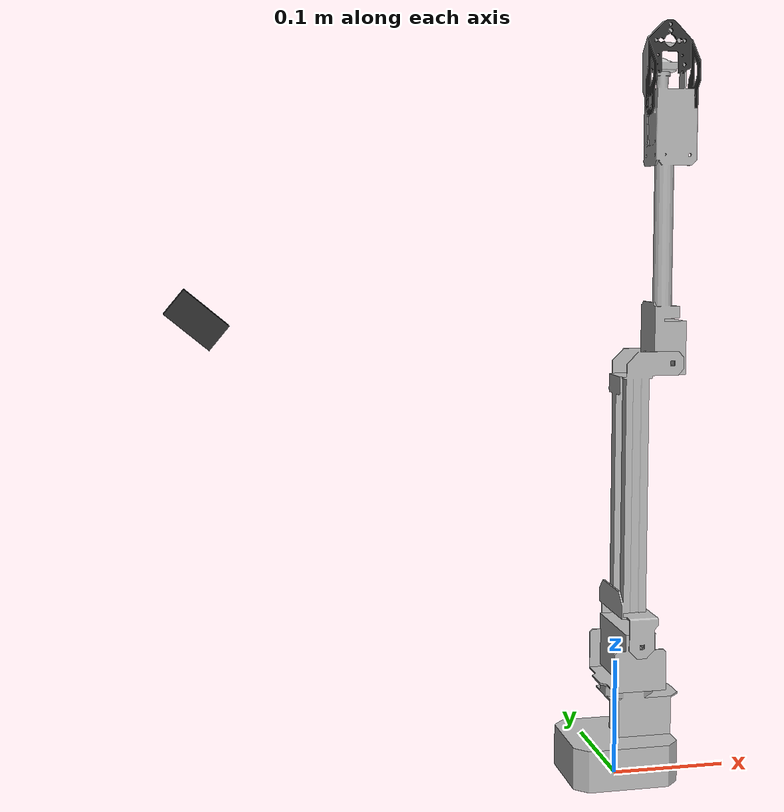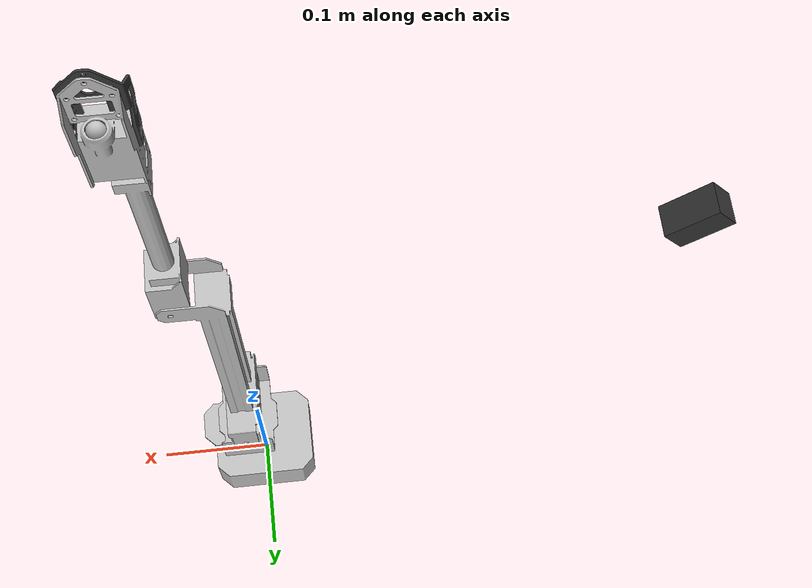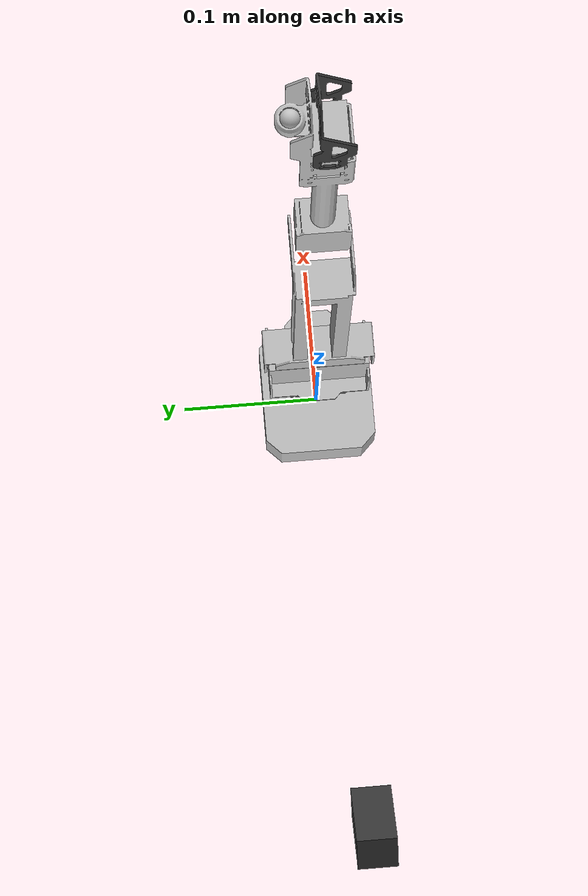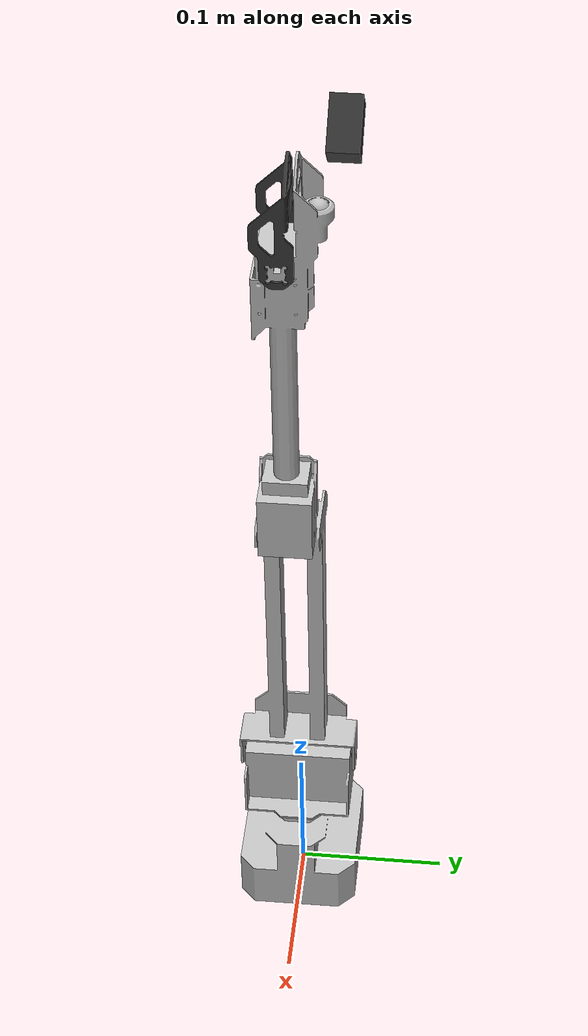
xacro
<?xml version="1.0"?>
<robot xmlns:xacro="http://www.ros.org/wiki/xacro" name="roarm_description">

  <xacro:arg name="initial_positions_file" default="initial_positions.yaml"/>
  <xacro:arg name="camera_mode"            default="eye_to_hand"/>

  <!-- ── Original URDF from submodule (read-only) ─────────────────────── -->
  <xacro:include filename="$(find roarm_description)/urdf/roarm_description.urdf"/>

  <!-- ── ros2_control hardware interface from roarm_moveit ─────────────── -->
  <xacro:include
    filename="$(find roarm_moveit)/config/roarm_description.ros2_control.xacro"/>
  <xacro:roarm_description_ros2_control
    name="FakeSystem"
    initial_positions_file="$(arg initial_positions_file)"/>

  <xacro:if value="${'$(arg camera_mode)' == 'eye_to_hand'}">
    <link name="camera_stand_link"/>
    <joint name="base_to_camera_stand" type="fixed">
      <parent link="base_link"/>
      <child  link="camera_stand_link"/>
      <!-- 35 cm behind base, 40 cm high, tilted ~40° downward toward workspace -->
      <origin xyz="-0.35 0.0 0.40" rpy="0.0 0.698 0.0"/>
    </joint>

    <link name="camera_link">
      <visual>
        <geometry><box size="0.045 0.025 0.025"/></geometry>
        <material name="dark_grey"><color rgba="0.2 0.2 0.2 1"/></material>
      </visual>
      <collision>
        <geometry><box size="0.045 0.025 0.025"/></geometry>
      </collision>
      <inertial>
        <mass value="0.085"/>
        <inertia ixx="1e-5" ixy="0" ixz="0" iyy="1e-5" iyz="0" izz="1e-5"/>
      </inertial>
    </link>
    <joint name="camera_stand_to_camera" type="fixed">
      <parent link="camera_stand_link"/>
      <child  link="camera_link"/>
      <origin xyz="0 0 0" rpy="0 0 0"/>
    </joint>
  </xacro:if>

  <xacro:unless value="${'$(arg camera_mode)' == 'eye_to_hand'}">
    <link name="camera_link">
      <visual>
        <geometry><box size="0.045 0.025 0.025"/></geometry>
        <material name="dark_grey"><color rgba="0.2 0.2 0.2 1"/></material>
      </visual>
      <collision>
        <geometry><box size="0.045 0.025 0.025"/></geometry>
      </collision>
      <inertial>
        <mass value="0.085"/>
        <inertia ixx="1e-5" ixy="0" ixz="0" iyy="1e-5" iyz="0" izz="1e-5"/>
      </inertial>
    </link>
    <joint name="link3_to_camera" type="fixed">
      <parent link="link3"/>
      <child  link="camera_link"/>
      <!-- Approximate bracket offset — update after calibration -->
      <origin xyz="0.02 -0.18 0.03" rpy="-1.5708 0.0 -1.5708"/>
    </joint>
  </xacro:unless>

  <link name="camera_color_optical_frame"/>
  <joint name="camera_to_color_optical" type="fixed">
    <parent link="camera_link"/>
    <child  link="camera_color_optical_frame"/>
    <origin xyz="0 0 0" rpy="-1.5708 0.0 -1.5708"/>
  </joint>

  <link name="camera_depth_optical_frame"/>
  <joint name="camera_to_depth_optical" type="fixed">
    <parent link="camera_link"/>
    <child  link="camera_depth_optical_frame"/>
    <!-- Small depth-to-color offset; updated by orbbec_camera_node TF via SDK extrinsics -->
    <origin xyz="0.015 0.0 0.0" rpy="-1.5708 0.0 -1.5708"/>
  </joint>

</robot>

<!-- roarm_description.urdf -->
<robot
  name="roarm_description">
  <link
    name="base_link">
    <inertial>
      <origin
        xyz="0.00373847392098165 -1.52445893424664E-10 0.0264265327292804"
        rpy="0 0 0" />
      <mass
        value="0.326392759093976" />
      <inertia
        ixx="0.000224202818963409"
        ixy="-1.96773409840189E-13"
        ixz="-2.99224798427881E-05"
        iyy="0.000286616921839535"
        iyz="-3.10964171549742E-13"
        izz="0.000349957607258242" />
    </inertial>
    <visual>
      <origin
        xyz="0 0 0"
        rpy="0 0 0" />
      <geometry>
        <mesh
          filename="package://roarm_description/meshes/base_link.STL" />
      </geometry>
      <material
        name="">
        <color
          rgba="0.752941176470588 0.752941176470588 0.752941176470588 1" />
      </material>
    </visual>
    <collision>
      <origin
        xyz="0 0 0"
        rpy="0 0 0" />
      <geometry>
        <mesh
          filename="package://roarm_description/meshes/base_link.STL" />
      </geometry>
    </collision>
  </link>
  <link
    name="link1">
    <inertial>
      <origin
        xyz="-3.11559626639357E-12 9.70240468164796E-06 -0.0146667419724465"
        rpy="0 0 0" />
      <mass
        value="0.0928887601998397" />
      <inertia
        ixx="6.09210980255232E-05"
        ixy="-2.79207542479444E-18"
        ixz="4.24841739939559E-15"
        iyy="2.53493566630784E-05"
        iyz="2.16442830142331E-08"
        izz="4.88050835919342E-05" />
    </inertial>
    <visual>
      <origin
        xyz="0 0 0"
        rpy="0 0 0" />
      <geometry>
        <mesh
          filename="package://roarm_description/meshes/link1.STL" />
      </geometry>
      <material
        name="">
        <color
          rgba="0.752941176470588 0.752941176470588 0.752941176470588 1" />
      </material>
    </visual>
    <collision>
      <origin
        xyz="0 0 0"
        rpy="0 0 0" />
      <geometry>
        <mesh
          filename="package://roarm_description/meshes/link1.STL" />
      </geometry>
    </collision>
  </link>
  <joint
    name="base_link_to_link1"
    type="revolute">
    <origin
      xyz="0.0100000008759151 0 0.123059270461044"
      rpy="0 0 0" />
    <parent
      link="base_link" />
    <child
      link="link1" />
    <axis
      xyz="0 0 -1" />
    <limit
      lower="-3.1416"
      upper="3.1416"
      effort="0"
      velocity="0" />
  </joint>
  <link
    name="link2">
    <inertial>
      <origin
        xyz="0.122021157535333 6.61338425981053E-05 -9.50311342843365E-05"
        rpy="0 0 0" />
      <mass
        value="0.0895817175833772" />
      <inertia
        ixx="2.6269354271334E-05"
        ixy="-2.55344668379587E-06"
        ixz="-3.90237379833709E-09"
        iyy="0.000350369536011831"
        iyz="-6.82396195680563E-09"
        izz="0.000333056833230846" />
    </inertial>
    <visual>
      <origin
        xyz="0 0 0"
        rpy="0 0 0" />
      <geometry>
        <mesh
          filename="package://roarm_description/meshes/link2.STL" />
      </geometry>
      <material
        name="">
        <color
          rgba="0.752941176470588 0.752941176470588 0.752941176470588 1" />
      </material>
    </visual>
    <collision>
      <origin
        xyz="0 0 0"
        rpy="0 0 0" />
      <geometry>
        <mesh
          filename="package://roarm_description/meshes/link2.STL" />
      </geometry>
    </collision>
  </link>
  <joint
    name="link1_to_link2"
    type="revolute">
    <origin
      xyz="0 0 0"
      rpy="-1.5707963267949 -1.5707963267949 0" />
    <parent
      link="link1" />
    <child
      link="link2" />
    <axis
      xyz="0 0 -1" />
    <limit
      lower="-1.5708"
      upper="1.5708"
      effort="0"
      velocity="0" />
  </joint>
  <link
    name="link3">
    <inertial>
      <origin
        xyz="-0.00076280945740961 -0.114419656440929 -0.000177274968057332"
        rpy="0 0 0" />
      <mass
        value="0.123009044986454" />
      <inertia
        ixx="0.000104111883333949"
        ixy="1.06443789581137E-07"
        ixz="1.54925816846055E-07"
        iyy="1.46357151076022E-05"
        iyz="-1.6435520156444E-07"
        izz="0.000104009297710106" />
    </inertial>
    <visual>
      <origin
        xyz="0 0 0"
        rpy="0 0 0" />
      <geometry>
        <mesh
          filename="package://roarm_description/meshes/link3.STL" />
      </geometry>
      <material
        name="">
        <color
          rgba="0.752941176470588 0.752941176470588 0.752941176470588 1" />
      </material>
    </visual>
    <collision>
      <origin
        xyz="0 0 0"
        rpy="0 0 0" />
      <geometry>
        <mesh
          filename="package://roarm_description/meshes/link3.STL" />
      </geometry>
    </collision>
  </link>
  <joint
    name="link2_to_link3"
    type="revolute">
    <origin
      xyz="0.236815132922094 0.0300023995170449 0"
      rpy="0 0 1.5707963267949" />
    <parent
      link="link2" />
    <child
      link="link3" />
    <axis
      xyz="0 0 1" />
    <limit
      lower="-1"
      upper="3.1416"
      effort="0"
      velocity="0" />
  </joint>
  <link
    name="gripper_link">
    <inertial>
      <origin
        xyz="0.0288857415118809 -0.000776842039187049 -0.000779764534254559"
        rpy="0 0 0" />
      <mass
        value="0.00365697683069397" />
      <inertia
        ixx="1.15139272656909E-06"
        ixy="1.31250385773157E-07"
        ixz="-2.41954534039415E-13"
        iyy="2.33034171341163E-06"
        iyz="4.1392257505497E-13"
        izz="1.47179863096272E-06" />
    </inertial>
    <visual>
      <origin
        xyz="0 0 0"
        rpy="0 0 0" />
      <geometry>
        <mesh
          filename="package://roarm_description/meshes/gripper_link.STL" />
      </geometry>
      <material
        name="">
        <color
          rgba="0.219607843137255 0.219607843137255 0.219607843137255 1" />
      </material>
    </visual>
    <collision>
      <origin
        xyz="0 0 0"
        rpy="0 0 0" />
      <geometry>
        <mesh
          filename="package://roarm_description/meshes/gripper_link.STL" />
      </geometry>
    </collision>
  </link>
  <joint
    name="link3_to_gripper_link"
    type="revolute">
    <origin
      xyz="0.002906 -0.21599 -0.00066683"
      rpy="-1.5708 0 -1.5708" />
    <parent
      link="link3" />
    <child
      link="gripper_link" />
    <axis
      xyz="0 0 1" />
    <limit
      lower="0"
      upper="1.5"
      effort="0"
      velocity="0" />
  </joint>
  <link name="hand_tcp"></link>
  <joint
    name="link3_to_hand_tcp"
    type="fixed">
    <origin
      xyz="0.002 -0.2802 0"
      rpy="-1.5708 0 -1.5708" />
    <parent
      link="link3" />
    <child
      link="hand_tcp" />
    <axis
      xyz="0 0 0" />
  </joint>
</robot>
